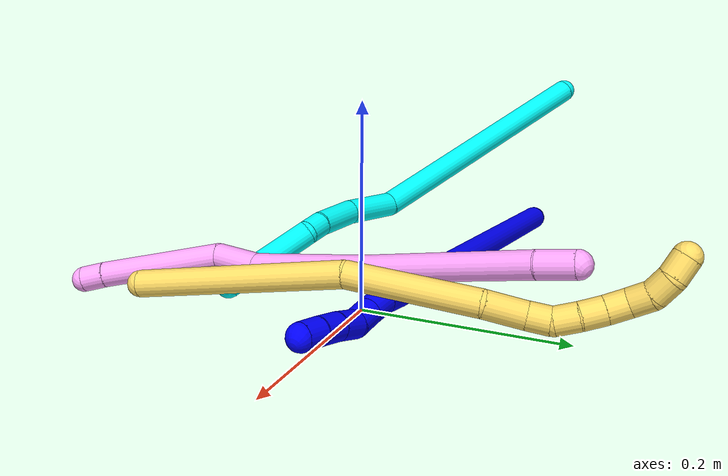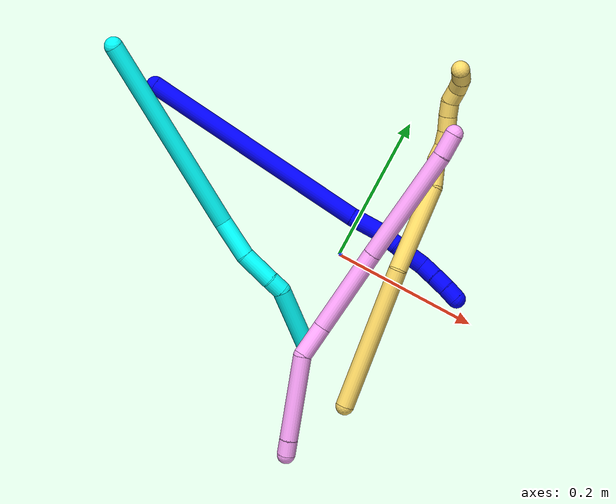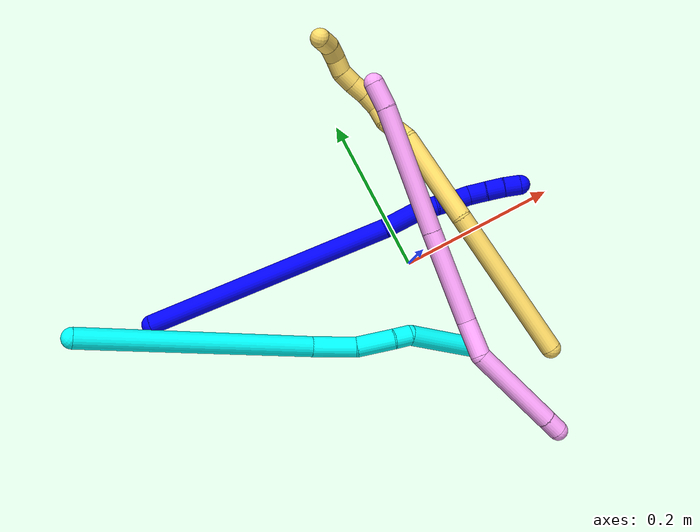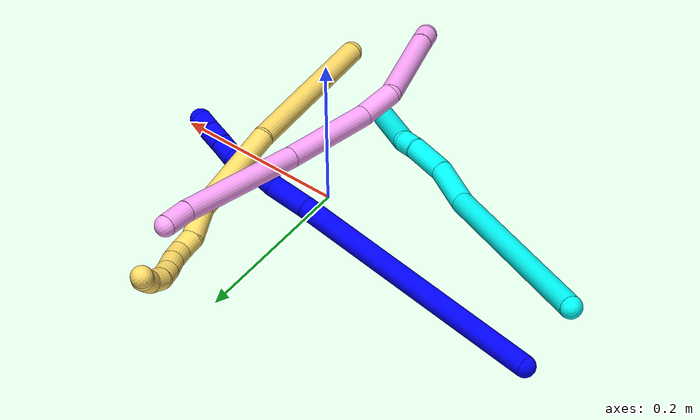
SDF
<sdf version="1.7">
 <world name="default">
  <model name="photoneo_s_sensor">
   <static>1</static>
   <pose>0 0 2 1.57079 1.57079 3.14159</pose>
   <link name="link">
    <inertial><mass>0.1</mass></inertial>
    <sensor name="sensor" type="depth">
     <update_rate>30</update_rate>
     <camera>
      <horizontal_fov>1.22</horizontal_fov>
      <image><width>1920</width><height>1200</height><format>B8G8R8</format></image>
      <clip><near>0.1</near><far>4</far></clip>
      <depth_camera><output>points</output></depth_camera>
     </camera>
     <plugin name="camera_plugin" filename="libgazebo_ros_depth_camera.so">
      <baseline>0.2</baseline>
      <alwaysOn>1</alwaysOn>
      <updateRate>0.0</updateRate>
      <cameraName>camera_ir</cameraName>
      <imageTopicName>/camera/color/image_raw</imageTopicName>
      <cameraInfoTopicName>/camera/color/camera_info</cameraInfoTopicName>
      <depthImageTopicName>/camera/depth/image_raw</depthImageTopicName>
      <depthImageCameraInfoTopicName>/camera/depth/camera_info</depthImageCameraInfoTopicName>
      <pointCloudTopicName>/camera/depth/points</pointCloudTopicName>
      <frameName>fr_optical</frameName>
      <pointCloudCutoff>0.1</pointCloudCutoff>
      <pointCloudCutoffMax>2.0</pointCloudCutoffMax>
      <distortionK1>0</distortionK1>
      <distortionK2>0</distortionK2>
      <distortionK3>0</distortionK3>
      <distortionT1>0</distortionT1>
      <distortionT2>0</distortionT2>
      <CxPrime>0</CxPrime>
      <Cx>0</Cx>
      <Cy>0</Cy>
      <focalLength>0</focalLength>
      <hackBaseline>0</hackBaseline>
     </plugin>
    </sensor>
   </link>
  </model>
  <model name="bin">
   <static>1</static>
   <link name="bottom">
    <collision name="collision-bottom">
     <pose>0 0 -0.01 0 -0 0</pose>
     <geometry><box><size>0.8 0.6 0.02</size></box></geometry>
     <surface>
      <friction><ode><mu>100</mu><mu2>100</mu2></ode></friction>
      <contact><collide_bitmask>65535</collide_bitmask></contact>
     </surface>
    </collision>
   </link>
   <link name="west_wall">
    <collision name="collision-west_wall">
     <pose>-0.41 0 0.1 0 -0 0</pose>
     <geometry><box><size>0.02 0.6 0.2</size></box></geometry>
     <surface>
      <friction><ode><mu>100</mu><mu2>100</mu2></ode></friction>
      <contact><collide_bitmask>65535</collide_bitmask></contact>
     </surface>
    </collision>
   </link>
   <link name="east_wall">
    <collision name="collision-east_wall">
     <pose>0.41 0 0.1 0 -0 0</pose>
     <geometry><box><size>0.02 0.6 0.2</size></box></geometry>
     <surface>
      <friction><ode><mu>100</mu><mu2>100</mu2></ode></friction>
      <contact><collide_bitmask>65535</collide_bitmask></contact>
     </surface>
    </collision>
   </link>
   <link name="south_wall">
    <collision name="collision-south_wall">
     <pose>0 -0.31 0.1 0 -0 0</pose>
     <geometry><box><size>0.8 0.02 0.2</size></box></geometry>
     <surface>
      <friction><ode><mu>100</mu><mu2>100</mu2></ode></friction>
      <contact><collide_bitmask>65535</collide_bitmask></contact>
     </surface>
    </collision>
   </link>
   <link name="north_wall">
    <collision name="collision-north_wall">
     <pose>0 0.31 0.1 0 -0 0</pose>
     <geometry><box><size>0.8 0.02 0.2</size></box></geometry>
     <surface>
      <friction><ode><mu>100</mu><mu2>100</mu2></ode></friction>
      <contact><collide_bitmask>65535</collide_bitmask></contact>
     </surface>
    </collision>
   </link>
  </model>
  <model name="1">
   <static>0</static>
   <link name="1">
    <collision name="collision-cylinder-e_1_1_4">
     <pose>0.062285 -0.010909 -0.146924 3.06748 0.399975 2.77979</pose>
     <geometry><cylinder><radius>0.0125</radius><length>0.319907</length></cylinder></geometry>
     <surface>
      <friction><ode><mu>1.16</mu><mu2>1.16</mu2><slip1>0</slip1><slip2>0</slip2></ode></friction>
      <contact><ode><kp>1e+06</kp><kd>1</kd><max_vel>0</max_vel><min_depth>0.001</min_depth></ode></contact>
     </surface>
    </collision>
    <visual name="visual-cylinder-e_1_1_4">
     <pose>0.062285 -0.010909 -0.146924 3.06748 0.399975 2.77979</pose>
     <geometry><cylinder><radius>0.0125</radius><length>0.319907</length></cylinder></geometry>
     <material><ambient>0 0 1 1</ambient></material>
    </visual>
    <collision name="collision-cylinder-e_2_4_5">
     <pose>0.134944 -0.021646 -0.313919 -3.13303 0.47704 -3.10639</pose>
     <geometry><cylinder><radius>0.0125</radius><length>0.045189</length></cylinder></geometry>
     <surface>
      <friction><ode><mu>1.16</mu><mu2>1.16</mu2><slip1>0</slip1><slip2>0</slip2></ode></friction>
      <contact><ode><kp>1e+06</kp><kd>1</kd><max_vel>0</max_vel><min_depth>0.001</min_depth></ode></contact>
     </surface>
    </collision>
    <visual name="visual-cylinder-e_2_4_5">
     <pose>0.134944 -0.021646 -0.313919 -3.13303 0.47704 -3.10639</pose>
     <geometry><cylinder><radius>0.0125</radius><length>0.045189</length></cylinder></geometry>
     <material><ambient>0 0 1 1</ambient></material>
    </visual>
    <collision name="collision-cylinder-e_3_5_6">
     <pose>0.149942 -0.023481 -0.345628 2.97086 0.373159 2.29038</pose>
     <geometry><cylinder><radius>0.0125</radius><length>0.025365</length></cylinder></geometry>
     <surface>
      <friction><ode><mu>1.16</mu><mu2>1.16</mu2><slip1>0</slip1><slip2>0</slip2></ode></friction>
      <contact><ode><kp>1e+06</kp><kd>1</kd><max_vel>0</max_vel><min_depth>0.001</min_depth></ode></contact>
     </surface>
    </collision>
    <visual name="visual-cylinder-e_3_5_6">
     <pose>0.149942 -0.023481 -0.345628 2.97086 0.373159 2.29038</pose>
     <geometry><cylinder><radius>0.0125</radius><length>0.025365</length></cylinder></geometry>
     <material><ambient>0 0 1 1</ambient></material>
    </visual>
    <collision name="collision-cylinder-e_4_6_7">
     <pose>0.15655 -0.02681 -0.36807 3.01975 0.180286 1.95431</pose>
     <geometry><cylinder><radius>0.0125</radius><length>0.022128</length></cylinder></geometry>
     <surface>
      <friction><ode><mu>1.16</mu><mu2>1.16</mu2><slip1>0</slip1><slip2>0</slip2></ode></friction>
      <contact><ode><kp>1e+06</kp><kd>1</kd><max_vel>0</max_vel><min_depth>0.001</min_depth></ode></contact>
     </surface>
    </collision>
    <visual name="visual-cylinder-e_4_6_7">
     <pose>0.15655 -0.02681 -0.36807 3.01975 0.180286 1.95431</pose>
     <geometry><cylinder><radius>0.0125</radius><length>0.022128</length></cylinder></geometry>
     <material><ambient>0 0 1 1</ambient></material>
    </visual>
    <collision name="collision-cylinder-e_5_7_8">
     <pose>0.160411 -0.02882 -0.389762 3.07857 0.170459 2.43473</pose>
     <geometry><cylinder><radius>0.0125</radius><length>0.02214</length></cylinder></geometry>
     <surface>
      <friction><ode><mu>1.16</mu><mu2>1.16</mu2><slip1>0</slip1><slip2>0</slip2></ode></friction>
      <contact><ode><kp>1e+06</kp><kd>1</kd><max_vel>0</max_vel><min_depth>0.001</min_depth></ode></contact>
     </surface>
    </collision>
    <visual name="visual-cylinder-e_5_7_8">
     <pose>0.160411 -0.02882 -0.389762 3.07857 0.170459 2.43473</pose>
     <geometry><cylinder><radius>0.0125</radius><length>0.02214</length></cylinder></geometry>
     <material><ambient>0 0 1 1</ambient></material>
    </visual>
    <collision name="collision-cylinder-e_6_8_9">
     <pose>0.168013 -0.032539 -0.410363 2.83908 0.512386 2.08763</pose>
     <geometry><cylinder><radius>0.0125</radius><length>0.02335</length></cylinder></geometry>
     <surface>
      <friction><ode><mu>1.16</mu><mu2>1.16</mu2><slip1>0</slip1><slip2>0</slip2></ode></friction>
      <contact><ode><kp>1e+06</kp><kd>1</kd><max_vel>0</max_vel><min_depth>0.001</min_depth></ode></contact>
     </surface>
    </collision>
    <visual name="visual-cylinder-e_6_8_9">
     <pose>0.168013 -0.032539 -0.410363 2.83908 0.512386 2.08763</pose>
     <geometry><cylinder><radius>0.0125</radius><length>0.02335</length></cylinder></geometry>
     <material><ambient>0 0 1 1</ambient></material>
    </visual>
    <collision name="collision-cylinder-e_7_9_10">
     <pose>0.178253 -0.038318 -0.42961 2.86102 0.427193 1.98739</pose>
     <geometry><cylinder><radius>0.0125</radius><length>0.021801</length></cylinder></geometry>
     <surface>
      <friction><ode><mu>1.16</mu><mu2>1.16</mu2><slip1>0</slip1><slip2>0</slip2></ode></friction>
      <contact><ode><kp>1e+06</kp><kd>1</kd><max_vel>0</max_vel><min_depth>0.001</min_depth></ode></contact>
     </surface>
    </collision>
    <visual name="visual-cylinder-e_7_9_10">
     <pose>0.178253 -0.038318 -0.42961 2.86102 0.427193 1.98739</pose>
     <geometry><cylinder><radius>0.0125</radius><length>0.021801</length></cylinder></geometry>
     <material><ambient>0 0 1 1</ambient></material>
    </visual>
    <collision name="collision-cylinder-e_8_10_2">
     <pose>0.186127 -0.04412 -0.448121 2.81354 0.3403 1.60815</pose>
     <geometry><cylinder><radius>0.0125</radius><length>0.020121</length></cylinder></geometry>
     <surface>
      <friction><ode><mu>1.16</mu><mu2>1.16</mu2><slip1>0</slip1><slip2>0</slip2></ode></friction>
      <contact><ode><kp>1e+06</kp><kd>1</kd><max_vel>0</max_vel><min_depth>0.001</min_depth></ode></contact>
     </surface>
    </collision>
    <visual name="visual-cylinder-e_8_10_2">
     <pose>0.186127 -0.04412 -0.448121 2.81354 0.3403 1.60815</pose>
     <geometry><cylinder><radius>0.0125</radius><length>0.020121</length></cylinder></geometry>
     <material><ambient>0 0 1 1</ambient></material>
    </visual>
    <collision name="collision-sphere-2">
     <pose>0.189485 -0.047176 -0.457098 0 -0 0</pose>
     <geometry><sphere><radius>0.0125</radius></sphere></geometry>
     <surface>
      <friction><ode><mu>1.16</mu><mu2>1.16</mu2><slip1>0</slip1><slip2>0</slip2></ode></friction>
      <contact><ode><kp>1e+06</kp><kd>1</kd><max_vel>0</max_vel><min_depth>0.001</min_depth></ode></contact>
     </surface>
    </collision>
    <visual name="visual-sphere-2">
     <pose>0.189485 -0.047176 -0.457098 0 -0 0</pose>
     <geometry><sphere><radius>0.0125</radius></sphere></geometry>
     <material><ambient>0 0 1 1</ambient></material>
    </visual>
    <collision name="collision-sphere-10">
     <pose>0.182769 -0.041065 -0.439143 0 -0 0</pose>
     <geometry><sphere><radius>0.0125</radius></sphere></geometry>
     <surface>
      <friction><ode><mu>1.16</mu><mu2>1.16</mu2><slip1>0</slip1><slip2>0</slip2></ode></friction>
      <contact><ode><kp>1e+06</kp><kd>1</kd><max_vel>0</max_vel><min_depth>0.001</min_depth></ode></contact>
     </surface>
    </collision>
    <visual name="visual-sphere-10">
     <pose>0.182769 -0.041065 -0.439143 0 -0 0</pose>
     <geometry><sphere><radius>0.0125</radius></sphere></geometry>
     <material><ambient>0 0 1 1</ambient></material>
    </visual>
    <collision name="collision-sphere-9">
     <pose>0.173737 -0.03557 -0.420077 0 -0 0</pose>
     <geometry><sphere><radius>0.0125</radius></sphere></geometry>
     <surface>
      <friction><ode><mu>1.16</mu><mu2>1.16</mu2><slip1>0</slip1><slip2>0</slip2></ode></friction>
      <contact><ode><kp>1e+06</kp><kd>1</kd><max_vel>0</max_vel><min_depth>0.001</min_depth></ode></contact>
     </surface>
    </collision>
    <visual name="visual-sphere-9">
     <pose>0.173737 -0.03557 -0.420077 0 -0 0</pose>
     <geometry><sphere><radius>0.0125</radius></sphere></geometry>
     <material><ambient>0 0 1 1</ambient></material>
    </visual>
    <collision name="collision-sphere-4">
     <pose>0.12457 -0.021818 -0.293848 0 -0 0</pose>
     <geometry><sphere><radius>0.0125</radius></sphere></geometry>
     <surface>
      <friction><ode><mu>1.16</mu><mu2>1.16</mu2><slip1>0</slip1><slip2>0</slip2></ode></friction>
      <contact><ode><kp>1e+06</kp><kd>1</kd><max_vel>0</max_vel><min_depth>0.001</min_depth></ode></contact>
     </surface>
    </collision>
    <visual name="visual-sphere-4">
     <pose>0.12457 -0.021818 -0.293848 0 -0 0</pose>
     <geometry><sphere><radius>0.0125</radius></sphere></geometry>
     <material><ambient>0 0 1 1</ambient></material>
    </visual>
    <collision name="collision-sphere-1">
     <geometry><sphere><radius>0.0125</radius></sphere></geometry>
     <surface>
      <friction><ode><mu>1.16</mu><mu2>1.16</mu2><slip1>0</slip1><slip2>0</slip2></ode></friction>
      <contact><ode><kp>1e+06</kp><kd>1</kd><max_vel>0</max_vel><min_depth>0.001</min_depth></ode></contact>
     </surface>
    </collision>
    <visual name="visual-sphere-1">
     <geometry><sphere><radius>0.0125</radius></sphere></geometry>
     <material><ambient>0 0 1 1</ambient></material>
    </visual>
    <collision name="collision-sphere-8">
     <pose>0.162289 -0.029507 -0.40065 0 -0 0</pose>
     <geometry><sphere><radius>0.0125</radius></sphere></geometry>
     <surface>
      <friction><ode><mu>1.16</mu><mu2>1.16</mu2><slip1>0</slip1><slip2>0</slip2></ode></friction>
      <contact><ode><kp>1e+06</kp><kd>1</kd><max_vel>0</max_vel><min_depth>0.001</min_depth></ode></contact>
     </surface>
    </collision>
    <visual name="visual-sphere-8">
     <pose>0.162289 -0.029507 -0.40065 0 -0 0</pose>
     <geometry><sphere><radius>0.0125</radius></sphere></geometry>
     <material><ambient>0 0 1 1</ambient></material>
    </visual>
    <collision name="collision-sphere-5">
     <pose>0.145319 -0.021474 -0.33399 0 -0 0</pose>
     <geometry><sphere><radius>0.0125</radius></sphere></geometry>
     <surface>
      <friction><ode><mu>1.16</mu><mu2>1.16</mu2><slip1>0</slip1><slip2>0</slip2></ode></friction>
      <contact><ode><kp>1e+06</kp><kd>1</kd><max_vel>0</max_vel><min_depth>0.001</min_depth></ode></contact>
     </surface>
    </collision>
    <visual name="visual-sphere-5">
     <pose>0.145319 -0.021474 -0.33399 0 -0 0</pose>
     <geometry><sphere><radius>0.0125</radius></sphere></geometry>
     <material><ambient>0 0 1 1</ambient></material>
    </visual>
    <collision name="collision-sphere-6">
     <pose>0.154566 -0.025487 -0.357266 0 -0 0</pose>
     <geometry><sphere><radius>0.0125</radius></sphere></geometry>
     <surface>
      <friction><ode><mu>1.16</mu><mu2>1.16</mu2><slip1>0</slip1><slip2>0</slip2></ode></friction>
      <contact><ode><kp>1e+06</kp><kd>1</kd><max_vel>0</max_vel><min_depth>0.001</min_depth></ode></contact>
     </surface>
    </collision>
    <visual name="visual-sphere-6">
     <pose>0.154566 -0.025487 -0.357266 0 -0 0</pose>
     <geometry><sphere><radius>0.0125</radius></sphere></geometry>
     <material><ambient>0 0 1 1</ambient></material>
    </visual>
    <collision name="collision-sphere-7">
     <pose>0.158533 -0.028133 -0.378874 0 -0 0</pose>
     <geometry><sphere><radius>0.0125</radius></sphere></geometry>
     <surface>
      <friction><ode><mu>1.16</mu><mu2>1.16</mu2><slip1>0</slip1><slip2>0</slip2></ode></friction>
      <contact><ode><kp>1e+06</kp><kd>1</kd><max_vel>0</max_vel><min_depth>0.001</min_depth></ode></contact>
     </surface>
    </collision>
    <visual name="visual-sphere-7">
     <pose>0.158533 -0.028133 -0.378874 0 -0 0</pose>
     <geometry><sphere><radius>0.0125</radius></sphere></geometry>
     <material><ambient>0 0 1 1</ambient></material>
    </visual>
    <inertial>
     <pose>0.096793 -0.017556 -0.229386 0 -0 0</pose>
     <mass>0.5</mass>
     <inertia>
      <ixx>-0.001458</ixx>
      <ixy>0</ixy>
      <ixz>0</ixz>
      <iyy>0.003498</iyy>
      <iyz>0</iyz>
      <izz>-0.000922</izz>
     </inertia>
    </inertial>
   </link>
   <pose>-0.327049 0.082118 0.012476 -0.499765 -1.17607 0.42895</pose>
  </model>
  <model name="3">
   <static>0</static>
   <link name="3">
    <collision name="collision-cylinder-e_1_1_4">
     <pose>0.065262 -0.022928 -0.123762 2.95841 0.478338 2.4211</pose>
     <geometry><cylinder><radius>0.0125</radius><length>0.283562</length></cylinder></geometry>
     <surface>
      <friction><ode><mu>1.16</mu><mu2>1.16</mu2><slip1>0</slip1><slip2>0</slip2></ode></friction>
      <contact><ode><kp>1e+06</kp><kd>1</kd><max_vel>0</max_vel><min_depth>0.001</min_depth></ode></contact>
     </surface>
    </collision>
    <visual name="visual-cylinder-e_1_1_4">
     <pose>0.065262 -0.022928 -0.123762 2.95841 0.478338 2.4211</pose>
     <geometry><cylinder><radius>0.0125</radius><length>0.283562</length></cylinder></geometry>
     <material><ambient>0.003922 1 0.996078 1</ambient></material>
    </visual>
    <collision name="collision-cylinder-e_2_4_5">
     <pose>0.145873 -0.058226 -0.265996 2.55156 0.604235 1.59606</pose>
     <geometry><cylinder><radius>0.0125</radius><length>0.05403</length></cylinder></geometry>
     <surface>
      <friction><ode><mu>1.16</mu><mu2>1.16</mu2><slip1>0</slip1><slip2>0</slip2></ode></friction>
      <contact><ode><kp>1e+06</kp><kd>1</kd><max_vel>0</max_vel><min_depth>0.001</min_depth></ode></contact>
     </surface>
    </collision>
    <visual name="visual-cylinder-e_2_4_5">
     <pose>0.145873 -0.058226 -0.265996 2.55156 0.604235 1.59606</pose>
     <geometry><cylinder><radius>0.0125</radius><length>0.05403</length></cylinder></geometry>
     <material><ambient>0.003922 1 0.996078 1</ambient></material>
    </visual>
    <collision name="collision-cylinder-e_3_5_6">
     <pose>0.17809 -0.07761 -0.298871 2.68834 0.811223 2.15602</pose>
     <geometry><cylinder><radius>0.0125</radius><length>0.046528</length></cylinder></geometry>
     <surface>
      <friction><ode><mu>1.16</mu><mu2>1.16</mu2><slip1>0</slip1><slip2>0</slip2></ode></friction>
      <contact><ode><kp>1e+06</kp><kd>1</kd><max_vel>0</max_vel><min_depth>0.001</min_depth></ode></contact>
     </surface>
    </collision>
    <visual name="visual-cylinder-e_3_5_6">
     <pose>0.17809 -0.07761 -0.298871 2.68834 0.811223 2.15602</pose>
     <geometry><cylinder><radius>0.0125</radius><length>0.046528</length></cylinder></geometry>
     <material><ambient>0.003922 1 0.996078 1</ambient></material>
    </visual>
    <collision name="collision-cylinder-e_4_6_7">
     <pose>0.202299 -0.086346 -0.320569 2.91001 0.774849 2.58623</pose>
     <geometry><cylinder><radius>0.0125</radius><length>0.020982</length></cylinder></geometry>
     <surface>
      <friction><ode><mu>1.16</mu><mu2>1.16</mu2><slip1>0</slip1><slip2>0</slip2></ode></friction>
      <contact><ode><kp>1e+06</kp><kd>1</kd><max_vel>0</max_vel><min_depth>0.001</min_depth></ode></contact>
     </surface>
    </collision>
    <visual name="visual-cylinder-e_4_6_7">
     <pose>0.202299 -0.086346 -0.320569 2.91001 0.774849 2.58623</pose>
     <geometry><cylinder><radius>0.0125</radius><length>0.020982</length></cylinder></geometry>
     <material><ambient>0.003922 1 0.996078 1</ambient></material>
    </visual>
    <collision name="collision-cylinder-e_5_7_2">
     <pose>0.224766 -0.093867 -0.372463 3.01224 0.324474 2.38801</pose>
     <geometry><cylinder><radius>0.0125</radius><length>0.094899</length></cylinder></geometry>
     <surface>
      <friction><ode><mu>1.16</mu><mu2>1.16</mu2><slip1>0</slip1><slip2>0</slip2></ode></friction>
      <contact><ode><kp>1e+06</kp><kd>1</kd><max_vel>0</max_vel><min_depth>0.001</min_depth></ode></contact>
     </surface>
    </collision>
    <visual name="visual-cylinder-e_5_7_2">
     <pose>0.224766 -0.093867 -0.372463 3.01224 0.324474 2.38801</pose>
     <geometry><cylinder><radius>0.0125</radius><length>0.094899</length></cylinder></geometry>
     <material><ambient>0.003922 1 0.996078 1</ambient></material>
    </visual>
    <collision name="collision-sphere-2">
     <pose>0.239893 -0.099669 -0.41706 0 -0 0</pose>
     <geometry><sphere><radius>0.0125</radius></sphere></geometry>
     <surface>
      <friction><ode><mu>1.16</mu><mu2>1.16</mu2><slip1>0</slip1><slip2>0</slip2></ode></friction>
      <contact><ode><kp>1e+06</kp><kd>1</kd><max_vel>0</max_vel><min_depth>0.001</min_depth></ode></contact>
     </surface>
    </collision>
    <visual name="visual-sphere-2">
     <pose>0.239893 -0.099669 -0.41706 0 -0 0</pose>
     <geometry><sphere><radius>0.0125</radius></sphere></geometry>
     <material><ambient>0.003922 1 0.996078 1</ambient></material>
    </visual>
    <collision name="collision-sphere-7">
     <pose>0.209639 -0.088066 -0.327865 0 -0 0</pose>
     <geometry><sphere><radius>0.0125</radius></sphere></geometry>
     <surface>
      <friction><ode><mu>1.16</mu><mu2>1.16</mu2><slip1>0</slip1><slip2>0</slip2></ode></friction>
      <contact><ode><kp>1e+06</kp><kd>1</kd><max_vel>0</max_vel><min_depth>0.001</min_depth></ode></contact>
     </surface>
    </collision>
    <visual name="visual-sphere-7">
     <pose>0.209639 -0.088066 -0.327865 0 -0 0</pose>
     <geometry><sphere><radius>0.0125</radius></sphere></geometry>
     <material><ambient>0.003922 1 0.996078 1</ambient></material>
    </visual>
    <collision name="collision-sphere-6">
     <pose>0.194959 -0.084625 -0.313273 0 -0 0</pose>
     <geometry><sphere><radius>0.0125</radius></sphere></geometry>
     <surface>
      <friction><ode><mu>1.16</mu><mu2>1.16</mu2><slip1>0</slip1><slip2>0</slip2></ode></friction>
      <contact><ode><kp>1e+06</kp><kd>1</kd><max_vel>0</max_vel><min_depth>0.001</min_depth></ode></contact>
     </surface>
    </collision>
    <visual name="visual-sphere-6">
     <pose>0.194959 -0.084625 -0.313273 0 -0 0</pose>
     <geometry><sphere><radius>0.0125</radius></sphere></geometry>
     <material><ambient>0.003922 1 0.996078 1</ambient></material>
    </visual>
    <collision name="collision-sphere-5">
     <pose>0.161221 -0.070595 -0.284468 0 -0 0</pose>
     <geometry><sphere><radius>0.0125</radius></sphere></geometry>
     <surface>
      <friction><ode><mu>1.16</mu><mu2>1.16</mu2><slip1>0</slip1><slip2>0</slip2></ode></friction>
      <contact><ode><kp>1e+06</kp><kd>1</kd><max_vel>0</max_vel><min_depth>0.001</min_depth></ode></contact>
     </surface>
    </collision>
    <visual name="visual-sphere-5">
     <pose>0.161221 -0.070595 -0.284468 0 -0 0</pose>
     <geometry><sphere><radius>0.0125</radius></sphere></geometry>
     <material><ambient>0.003922 1 0.996078 1</ambient></material>
    </visual>
    <collision name="collision-sphere-1">
     <geometry><sphere><radius>0.0125</radius></sphere></geometry>
     <surface>
      <friction><ode><mu>1.16</mu><mu2>1.16</mu2><slip1>0</slip1><slip2>0</slip2></ode></friction>
      <contact><ode><kp>1e+06</kp><kd>1</kd><max_vel>0</max_vel><min_depth>0.001</min_depth></ode></contact>
     </surface>
    </collision>
    <visual name="visual-sphere-1">
     <geometry><sphere><radius>0.0125</radius></sphere></geometry>
     <material><ambient>0.003922 1 0.996078 1</ambient></material>
    </visual>
    <collision name="collision-sphere-4">
     <pose>0.130525 -0.045857 -0.247523 0 -0 0</pose>
     <geometry><sphere><radius>0.0125</radius></sphere></geometry>
     <surface>
      <friction><ode><mu>1.16</mu><mu2>1.16</mu2><slip1>0</slip1><slip2>0</slip2></ode></friction>
      <contact><ode><kp>1e+06</kp><kd>1</kd><max_vel>0</max_vel><min_depth>0.001</min_depth></ode></contact>
     </surface>
    </collision>
    <visual name="visual-sphere-4">
     <pose>0.130525 -0.045857 -0.247523 0 -0 0</pose>
     <geometry><sphere><radius>0.0125</radius></sphere></geometry>
     <material><ambient>0.003922 1 0.996078 1</ambient></material>
    </visual>
    <inertial>
     <pose>0.120496 -0.047956 -0.210888 0 -0 0</pose>
     <mass>0.5</mass>
     <inertia>
      <ixx>-0.000126</ixx>
      <ixy>0</ixy>
      <ixz>0</ixz>
      <iyy>0.002768</iyy>
      <iyz>0</iyz>
      <izz>-0.000625</izz>
     </inertia>
    </inertial>
   </link>
   <pose>-0.388502 0.095954 0.157842 -0.900102 -0.138251 0.468211</pose>
  </model>
  <model name="4">
   <static>0</static>
   <link name="4">
    <collision name="collision-cylinder-e_1_1_4">
     <pose>-0.002465 -0.010578 0.012646 0.696621 -0.148427 -0.053982</pose>
     <geometry><cylinder><radius>0.0125</radius><length>0.03334</length></cylinder></geometry>
     <surface>
      <friction><ode><mu>1.16</mu><mu2>1.16</mu2><slip1>0</slip1><slip2>0</slip2></ode></friction>
      <contact><ode><kp>1e+06</kp><kd>1</kd><max_vel>0</max_vel><min_depth>0.001</min_depth></ode></contact>
     </surface>
    </collision>
    <visual name="visual-cylinder-e_1_1_4">
     <pose>-0.002465 -0.010578 0.012646 0.696621 -0.148427 -0.053982</pose>
     <geometry><cylinder><radius>0.0125</radius><length>0.03334</length></cylinder></geometry>
     <material><ambient>1 0.65098 0.996078 1</ambient></material>
    </visual>
    <collision name="collision-cylinder-e_2_4_5">
     <pose>-0.025425 -0.068291 0.087695 0.646895 -0.256299 -0.086336</pose>
     <geometry><cylinder><radius>0.0125</radius><length>0.161689</length></cylinder></geometry>
     <surface>
      <friction><ode><mu>1.16</mu><mu2>1.16</mu2><slip1>0</slip1><slip2>0</slip2></ode></friction>
      <contact><ode><kp>1e+06</kp><kd>1</kd><max_vel>0</max_vel><min_depth>0.001</min_depth></ode></contact>
     </surface>
    </collision>
    <visual name="visual-cylinder-e_2_4_5">
     <pose>-0.025425 -0.068291 0.087695 0.646895 -0.256299 -0.086336</pose>
     <geometry><cylinder><radius>0.0125</radius><length>0.161689</length></cylinder></geometry>
     <material><ambient>1 0.65098 0.996078 1</ambient></material>
    </visual>
    <collision name="collision-cylinder-e_3_5_6">
     <pose>-0.05855 -0.149653 0.197438 0.626004 -0.212941 -0.069151</pose>
     <geometry><cylinder><radius>0.0125</radius><length>0.119535</length></cylinder></geometry>
     <surface>
      <friction><ode><mu>1.16</mu><mu2>1.16</mu2><slip1>0</slip1><slip2>0</slip2></ode></friction>
      <contact><ode><kp>1e+06</kp><kd>1</kd><max_vel>0</max_vel><min_depth>0.001</min_depth></ode></contact>
     </surface>
    </collision>
    <visual name="visual-cylinder-e_3_5_6">
     <pose>-0.05855 -0.149653 0.197438 0.626004 -0.212941 -0.069151</pose>
     <geometry><cylinder><radius>0.0125</radius><length>0.119535</length></cylinder></geometry>
     <material><ambient>1 0.65098 0.996078 1</ambient></material>
    </visual>
    <collision name="collision-cylinder-e_4_6_7">
     <pose>-0.072377 -0.194679 0.264979 0.490899 -0.05215 -0.013066</pose>
     <geometry><cylinder><radius>0.0125</radius><length>0.045874</length></cylinder></geometry>
     <surface>
      <friction><ode><mu>1.16</mu><mu2>1.16</mu2><slip1>0</slip1><slip2>0</slip2></ode></friction>
      <contact><ode><kp>1e+06</kp><kd>1</kd><max_vel>0</max_vel><min_depth>0.001</min_depth></ode></contact>
     </surface>
    </collision>
    <visual name="visual-cylinder-e_4_6_7">
     <pose>-0.072377 -0.194679 0.264979 0.490899 -0.05215 -0.013066</pose>
     <geometry><cylinder><radius>0.0125</radius><length>0.045874</length></cylinder></geometry>
     <material><ambient>1 0.65098 0.996078 1</ambient></material>
    </visual>
    <collision name="collision-cylinder-e_5_7_8">
     <pose>-0.072443 -0.254835 0.31724 0.994742 0.01918 0.010413</pose>
     <geometry><cylinder><radius>0.0125</radius><length>0.117735</length></cylinder></geometry>
     <surface>
      <friction><ode><mu>1.16</mu><mu2>1.16</mu2><slip1>0</slip1><slip2>0</slip2></ode></friction>
      <contact><ode><kp>1e+06</kp><kd>1</kd><max_vel>0</max_vel><min_depth>0.001</min_depth></ode></contact>
     </surface>
    </collision>
    <visual name="visual-cylinder-e_5_7_8">
     <pose>-0.072443 -0.254835 0.31724 0.994742 0.01918 0.010413</pose>
     <geometry><cylinder><radius>0.0125</radius><length>0.117735</length></cylinder></geometry>
     <material><ambient>1 0.65098 0.996078 1</ambient></material>
    </visual>
    <collision name="collision-cylinder-e_6_8_2">
     <pose>-0.071589 -0.313539 0.35493 1.02868 -0.025227 -0.014255</pose>
     <geometry><cylinder><radius>0.0125</radius><length>0.021827</length></cylinder></geometry>
     <surface>
      <friction><ode><mu>1.16</mu><mu2>1.16</mu2><slip1>0</slip1><slip2>0</slip2></ode></friction>
      <contact><ode><kp>1e+06</kp><kd>1</kd><max_vel>0</max_vel><min_depth>0.001</min_depth></ode></contact>
     </surface>
    </collision>
    <visual name="visual-cylinder-e_6_8_2">
     <pose>-0.071589 -0.313539 0.35493 1.02868 -0.025227 -0.014255</pose>
     <geometry><cylinder><radius>0.0125</radius><length>0.021827</length></cylinder></geometry>
     <material><ambient>1 0.65098 0.996078 1</ambient></material>
    </visual>
    <collision name="collision-sphere-2">
     <pose>-0.071865 -0.322885 0.360559 0 -0 0</pose>
     <geometry><sphere><radius>0.0125</radius></sphere></geometry>
     <surface>
      <friction><ode><mu>1.16</mu><mu2>1.16</mu2><slip1>0</slip1><slip2>0</slip2></ode></friction>
      <contact><ode><kp>1e+06</kp><kd>1</kd><max_vel>0</max_vel><min_depth>0.001</min_depth></ode></contact>
     </surface>
    </collision>
    <visual name="visual-sphere-2">
     <pose>-0.071865 -0.322885 0.360559 0 -0 0</pose>
     <geometry><sphere><radius>0.0125</radius></sphere></geometry>
     <material><ambient>1 0.65098 0.996078 1</ambient></material>
    </visual>
    <collision name="collision-sphere-4">
     <pose>-0.00493 -0.021157 0.025291 0 -0 0</pose>
     <geometry><sphere><radius>0.0125</radius></sphere></geometry>
     <surface>
      <friction><ode><mu>1.16</mu><mu2>1.16</mu2><slip1>0</slip1><slip2>0</slip2></ode></friction>
      <contact><ode><kp>1e+06</kp><kd>1</kd><max_vel>0</max_vel><min_depth>0.001</min_depth></ode></contact>
     </surface>
    </collision>
    <visual name="visual-sphere-4">
     <pose>-0.00493 -0.021157 0.025291 0 -0 0</pose>
     <geometry><sphere><radius>0.0125</radius></sphere></geometry>
     <material><ambient>1 0.65098 0.996078 1</ambient></material>
    </visual>
    <collision name="collision-sphere-1">
     <geometry><sphere><radius>0.0125</radius></sphere></geometry>
     <surface>
      <friction><ode><mu>1.16</mu><mu2>1.16</mu2><slip1>0</slip1><slip2>0</slip2></ode></friction>
      <contact><ode><kp>1e+06</kp><kd>1</kd><max_vel>0</max_vel><min_depth>0.001</min_depth></ode></contact>
     </surface>
    </collision>
    <visual name="visual-sphere-1">
     <geometry><sphere><radius>0.0125</radius></sphere></geometry>
     <material><ambient>1 0.65098 0.996078 1</ambient></material>
    </visual>
    <collision name="collision-sphere-8">
     <pose>-0.071314 -0.304194 0.349301 0 -0 0</pose>
     <geometry><sphere><radius>0.0125</radius></sphere></geometry>
     <surface>
      <friction><ode><mu>1.16</mu><mu2>1.16</mu2><slip1>0</slip1><slip2>0</slip2></ode></friction>
      <contact><ode><kp>1e+06</kp><kd>1</kd><max_vel>0</max_vel><min_depth>0.001</min_depth></ode></contact>
     </surface>
    </collision>
    <visual name="visual-sphere-8">
     <pose>-0.071314 -0.304194 0.349301 0 -0 0</pose>
     <geometry><sphere><radius>0.0125</radius></sphere></geometry>
     <material><ambient>1 0.65098 0.996078 1</ambient></material>
    </visual>
    <collision name="collision-sphere-5">
     <pose>-0.045919 -0.115426 0.150098 0 -0 0</pose>
     <geometry><sphere><radius>0.0125</radius></sphere></geometry>
     <surface>
      <friction><ode><mu>1.16</mu><mu2>1.16</mu2><slip1>0</slip1><slip2>0</slip2></ode></friction>
      <contact><ode><kp>1e+06</kp><kd>1</kd><max_vel>0</max_vel><min_depth>0.001</min_depth></ode></contact>
     </surface>
    </collision>
    <visual name="visual-sphere-5">
     <pose>-0.045919 -0.115426 0.150098 0 -0 0</pose>
     <geometry><sphere><radius>0.0125</radius></sphere></geometry>
     <material><ambient>1 0.65098 0.996078 1</ambient></material>
    </visual>
    <collision name="collision-sphere-6">
     <pose>-0.071181 -0.183881 0.244778 0 -0 0</pose>
     <geometry><sphere><radius>0.0125</radius></sphere></geometry>
     <surface>
      <friction><ode><mu>1.16</mu><mu2>1.16</mu2><slip1>0</slip1><slip2>0</slip2></ode></friction>
      <contact><ode><kp>1e+06</kp><kd>1</kd><max_vel>0</max_vel><min_depth>0.001</min_depth></ode></contact>
     </surface>
    </collision>
    <visual name="visual-sphere-6">
     <pose>-0.071181 -0.183881 0.244778 0 -0 0</pose>
     <geometry><sphere><radius>0.0125</radius></sphere></geometry>
     <material><ambient>1 0.65098 0.996078 1</ambient></material>
    </visual>
    <collision name="collision-sphere-7">
     <pose>-0.073572 -0.205477 0.28518 0 -0 0</pose>
     <geometry><sphere><radius>0.0125</radius></sphere></geometry>
     <surface>
      <friction><ode><mu>1.16</mu><mu2>1.16</mu2><slip1>0</slip1><slip2>0</slip2></ode></friction>
      <contact><ode><kp>1e+06</kp><kd>1</kd><max_vel>0</max_vel><min_depth>0.001</min_depth></ode></contact>
     </surface>
    </collision>
    <visual name="visual-sphere-7">
     <pose>-0.073572 -0.205477 0.28518 0 -0 0</pose>
     <geometry><sphere><radius>0.0125</radius></sphere></geometry>
     <material><ambient>1 0.65098 0.996078 1</ambient></material>
    </visual>
    <inertial>
     <pose>-0.049207 -0.150121 0.190909 0 -0 0</pose>
     <mass>0.5</mass>
     <inertia>
      <ixx>0.000601</ixx>
      <ixy>0</ixy>
      <ixz>0</ixz>
      <iyy>0.000435</iyy>
      <iyz>0</iyz>
      <izz>0.000569</izz>
     </inertia>
    </inertial>
   </link>
   <pose>0.055751 0.20995 0.093913 0.926916 -0.907815 0.042506</pose>
  </model>
  <model name="5">
   <static>0</static>
   <link name="5">
    <collision name="collision-cylinder-e_1_1_4">
     <pose>-0.065914 0.048398 0.055504 -0.717112 -0.730077 0.284503</pose>
     <geometry><cylinder><radius>0.0125</radius><length>0.197664</length></cylinder></geometry>
     <surface>
      <friction><ode><mu>1.16</mu><mu2>1.16</mu2><slip1>0</slip1><slip2>0</slip2></ode></friction>
      <contact><ode><kp>1e+06</kp><kd>1</kd><max_vel>0</max_vel><min_depth>0.001</min_depth></ode></contact>
     </surface>
    </collision>
    <visual name="visual-cylinder-e_1_1_4">
     <pose>-0.065914 0.048398 0.055504 -0.717112 -0.730077 0.284503</pose>
     <geometry><cylinder><radius>0.0125</radius><length>0.197664</length></cylinder></geometry>
     <material><ambient>1 0.858824 0.4 1</ambient></material>
    </visual>
    <collision name="collision-cylinder-e_2_4_5">
     <pose>-0.168321 0.137454 0.135844 -1.02245 -0.653651 0.375831</pose>
     <geometry><cylinder><radius>0.0125</radius><length>0.120027</length></cylinder></geometry>
     <surface>
      <friction><ode><mu>1.16</mu><mu2>1.16</mu2><slip1>0</slip1><slip2>0</slip2></ode></friction>
      <contact><ode><kp>1e+06</kp><kd>1</kd><max_vel>0</max_vel><min_depth>0.001</min_depth></ode></contact>
     </surface>
    </collision>
    <visual name="visual-cylinder-e_2_4_5">
     <pose>-0.168321 0.137454 0.135844 -1.02245 -0.653651 0.375831</pose>
     <geometry><cylinder><radius>0.0125</radius><length>0.120027</length></cylinder></geometry>
     <material><ambient>1 0.858824 0.4 1</ambient></material>
    </visual>
    <collision name="collision-cylinder-e_3_5_6">
     <pose>-0.219019 0.19015 0.163112 -1.37132 -0.857906 0.716043</pose>
     <geometry><cylinder><radius>0.0125</radius><length>0.037555</length></cylinder></geometry>
     <surface>
      <friction><ode><mu>1.16</mu><mu2>1.16</mu2><slip1>0</slip1><slip2>0</slip2></ode></friction>
      <contact><ode><kp>1e+06</kp><kd>1</kd><max_vel>0</max_vel><min_depth>0.001</min_depth></ode></contact>
     </surface>
    </collision>
    <visual name="visual-cylinder-e_3_5_6">
     <pose>-0.219019 0.19015 0.163112 -1.37132 -0.857906 0.716043</pose>
     <geometry><cylinder><radius>0.0125</radius><length>0.037555</length></cylinder></geometry>
     <material><ambient>1 0.858824 0.4 1</ambient></material>
    </visual>
    <collision name="collision-cylinder-e_4_6_7">
     <pose>-0.239356 0.209674 0.170389 -0.996613 -0.602485 0.334938</pose>
     <geometry><cylinder><radius>0.0125</radius><length>0.021644</length></cylinder></geometry>
     <surface>
      <friction><ode><mu>1.16</mu><mu2>1.16</mu2><slip1>0</slip1><slip2>0</slip2></ode></friction>
      <contact><ode><kp>1e+06</kp><kd>1</kd><max_vel>0</max_vel><min_depth>0.001</min_depth></ode></contact>
     </surface>
    </collision>
    <visual name="visual-cylinder-e_4_6_7">
     <pose>-0.239356 0.209674 0.170389 -0.996613 -0.602485 0.334938</pose>
     <geometry><cylinder><radius>0.0125</radius><length>0.021644</length></cylinder></geometry>
     <material><ambient>1 0.858824 0.4 1</ambient></material>
    </visual>
    <collision name="collision-cylinder-e_5_7_8">
     <pose>-0.253833 0.220754 0.181034 -0.55449 -0.885177 0.268128</pose>
     <geometry><cylinder><radius>0.0125</radius><length>0.02156</length></cylinder></geometry>
     <surface>
      <friction><ode><mu>1.16</mu><mu2>1.16</mu2><slip1>0</slip1><slip2>0</slip2></ode></friction>
      <contact><ode><kp>1e+06</kp><kd>1</kd><max_vel>0</max_vel><min_depth>0.001</min_depth></ode></contact>
     </surface>
    </collision>
    <visual name="visual-cylinder-e_5_7_8">
     <pose>-0.253833 0.220754 0.181034 -0.55449 -0.885177 0.268128</pose>
     <geometry><cylinder><radius>0.0125</radius><length>0.02156</length></cylinder></geometry>
     <material><ambient>1 0.858824 0.4 1</ambient></material>
    </visual>
    <collision name="collision-cylinder-e_6_8_9">
     <pose>-0.271144 0.22707 0.191662 -0.513706 -1.01733 0.290847</pose>
     <geometry><cylinder><radius>0.0125</radius><length>0.021082</length></cylinder></geometry>
     <surface>
      <friction><ode><mu>1.16</mu><mu2>1.16</mu2><slip1>0</slip1><slip2>0</slip2></ode></friction>
      <contact><ode><kp>1e+06</kp><kd>1</kd><max_vel>0</max_vel><min_depth>0.001</min_depth></ode></contact>
     </surface>
    </collision>
    <visual name="visual-cylinder-e_6_8_9">
     <pose>-0.271144 0.22707 0.191662 -0.513706 -1.01733 0.290847</pose>
     <geometry><cylinder><radius>0.0125</radius><length>0.021082</length></cylinder></geometry>
     <material><ambient>1 0.858824 0.4 1</ambient></material>
    </visual>
    <collision name="collision-cylinder-e_7_9_10">
     <pose>-0.288144 0.232014 0.202093 -0.377368 -0.927008 0.190311</pose>
     <geometry><cylinder><radius>0.0125</radius><length>0.020088</length></cylinder></geometry>
     <surface>
      <friction><ode><mu>1.16</mu><mu2>1.16</mu2><slip1>0</slip1><slip2>0</slip2></ode></friction>
      <contact><ode><kp>1e+06</kp><kd>1</kd><max_vel>0</max_vel><min_depth>0.001</min_depth></ode></contact>
     </surface>
    </collision>
    <visual name="visual-cylinder-e_7_9_10">
     <pose>-0.288144 0.232014 0.202093 -0.377368 -0.927008 0.190311</pose>
     <geometry><cylinder><radius>0.0125</radius><length>0.020088</length></cylinder></geometry>
     <material><ambient>1 0.858824 0.4 1</ambient></material>
    </visual>
    <collision name="collision-cylinder-e_8_10_11">
     <pose>-0.301521 0.236766 0.215836 -0.301351 -0.559971 0.087256</pose>
     <geometry><cylinder><radius>0.0125</radius><length>0.02012</length></cylinder></geometry>
     <surface>
      <friction><ode><mu>1.16</mu><mu2>1.16</mu2><slip1>0</slip1><slip2>0</slip2></ode></friction>
      <contact><ode><kp>1e+06</kp><kd>1</kd><max_vel>0</max_vel><min_depth>0.001</min_depth></ode></contact>
     </surface>
    </collision>
    <visual name="visual-cylinder-e_8_10_11">
     <pose>-0.301521 0.236766 0.215836 -0.301351 -0.559971 0.087256</pose>
     <geometry><cylinder><radius>0.0125</radius><length>0.02012</length></cylinder></geometry>
     <material><ambient>1 0.858824 0.4 1</ambient></material>
    </visual>
    <collision name="collision-cylinder-e_9_11_12">
     <pose>-0.311984 0.237765 0.232515 0.177343 -0.533064 -0.048537</pose>
     <geometry><cylinder><radius>0.0125</radius><length>0.020146</length></cylinder></geometry>
     <surface>
      <friction><ode><mu>1.16</mu><mu2>1.16</mu2><slip1>0</slip1><slip2>0</slip2></ode></friction>
      <contact><ode><kp>1e+06</kp><kd>1</kd><max_vel>0</max_vel><min_depth>0.001</min_depth></ode></contact>
     </surface>
    </collision>
    <visual name="visual-cylinder-e_9_11_12">
     <pose>-0.311984 0.237765 0.232515 0.177343 -0.533064 -0.048537</pose>
     <geometry><cylinder><radius>0.0125</radius><length>0.020146</length></cylinder></geometry>
     <material><ambient>1 0.858824 0.4 1</ambient></material>
    </visual>
    <collision name="collision-cylinder-e_10_12_2">
     <pose>-0.323601 0.232231 0.247604 0.548707 -0.702558 -0.205565</pose>
     <geometry><cylinder><radius>0.0125</radius><length>0.020116</length></cylinder></geometry>
     <surface>
      <friction><ode><mu>1.16</mu><mu2>1.16</mu2><slip1>0</slip1><slip2>0</slip2></ode></friction>
      <contact><ode><kp>1e+06</kp><kd>1</kd><max_vel>0</max_vel><min_depth>0.001</min_depth></ode></contact>
     </surface>
    </collision>
    <visual name="visual-cylinder-e_10_12_2">
     <pose>-0.323601 0.232231 0.247604 0.548707 -0.702558 -0.205565</pose>
     <geometry><cylinder><radius>0.0125</radius><length>0.020116</length></cylinder></geometry>
     <material><ambient>1 0.858824 0.4 1</ambient></material>
    </visual>
    <collision name="collision-sphere-2">
     <pose>-0.330101 0.228227 0.254153 0 -0 0</pose>
     <geometry><sphere><radius>0.0125</radius></sphere></geometry>
     <surface>
      <friction><ode><mu>1.16</mu><mu2>1.16</mu2><slip1>0</slip1><slip2>0</slip2></ode></friction>
      <contact><ode><kp>1e+06</kp><kd>1</kd><max_vel>0</max_vel><min_depth>0.001</min_depth></ode></contact>
     </surface>
    </collision>
    <visual name="visual-sphere-2">
     <pose>-0.330101 0.228227 0.254153 0 -0 0</pose>
     <geometry><sphere><radius>0.0125</radius></sphere></geometry>
     <material><ambient>1 0.858824 0.4 1</ambient></material>
    </visual>
    <collision name="collision-sphere-12">
     <pose>-0.317102 0.236235 0.241054 0 -0 0</pose>
     <geometry><sphere><radius>0.0125</radius></sphere></geometry>
     <surface>
      <friction><ode><mu>1.16</mu><mu2>1.16</mu2><slip1>0</slip1><slip2>0</slip2></ode></friction>
      <contact><ode><kp>1e+06</kp><kd>1</kd><max_vel>0</max_vel><min_depth>0.001</min_depth></ode></contact>
     </surface>
    </collision>
    <visual name="visual-sphere-12">
     <pose>-0.317102 0.236235 0.241054 0 -0 0</pose>
     <geometry><sphere><radius>0.0125</radius></sphere></geometry>
     <material><ambient>1 0.858824 0.4 1</ambient></material>
    </visual>
    <collision name="collision-sphere-11">
     <pose>-0.306865 0.239295 0.223976 0 -0 0</pose>
     <geometry><sphere><radius>0.0125</radius></sphere></geometry>
     <surface>
      <friction><ode><mu>1.16</mu><mu2>1.16</mu2><slip1>0</slip1><slip2>0</slip2></ode></friction>
      <contact><ode><kp>1e+06</kp><kd>1</kd><max_vel>0</max_vel><min_depth>0.001</min_depth></ode></contact>
     </surface>
    </collision>
    <visual name="visual-sphere-11">
     <pose>-0.306865 0.239295 0.223976 0 -0 0</pose>
     <geometry><sphere><radius>0.0125</radius></sphere></geometry>
     <material><ambient>1 0.858824 0.4 1</ambient></material>
    </visual>
    <collision name="collision-sphere-10">
     <pose>-0.296178 0.234236 0.207697 0 -0 0</pose>
     <geometry><sphere><radius>0.0125</radius></sphere></geometry>
     <surface>
      <friction><ode><mu>1.16</mu><mu2>1.16</mu2><slip1>0</slip1><slip2>0</slip2></ode></friction>
      <contact><ode><kp>1e+06</kp><kd>1</kd><max_vel>0</max_vel><min_depth>0.001</min_depth></ode></contact>
     </surface>
    </collision>
    <visual name="visual-sphere-10">
     <pose>-0.296178 0.234236 0.207697 0 -0 0</pose>
     <geometry><sphere><radius>0.0125</radius></sphere></geometry>
     <material><ambient>1 0.858824 0.4 1</ambient></material>
    </visual>
    <collision name="collision-sphere-9">
     <pose>-0.280111 0.229793 0.196488 0 -0 0</pose>
     <geometry><sphere><radius>0.0125</radius></sphere></geometry>
     <surface>
      <friction><ode><mu>1.16</mu><mu2>1.16</mu2><slip1>0</slip1><slip2>0</slip2></ode></friction>
      <contact><ode><kp>1e+06</kp><kd>1</kd><max_vel>0</max_vel><min_depth>0.001</min_depth></ode></contact>
     </surface>
    </collision>
    <visual name="visual-sphere-9">
     <pose>-0.280111 0.229793 0.196488 0 -0 0</pose>
     <geometry><sphere><radius>0.0125</radius></sphere></geometry>
     <material><ambient>1 0.858824 0.4 1</ambient></material>
    </visual>
    <collision name="collision-sphere-4">
     <pose>-0.131827 0.096797 0.111009 0 -0 0</pose>
     <geometry><sphere><radius>0.0125</radius></sphere></geometry>
     <surface>
      <friction><ode><mu>1.16</mu><mu2>1.16</mu2><slip1>0</slip1><slip2>0</slip2></ode></friction>
      <contact><ode><kp>1e+06</kp><kd>1</kd><max_vel>0</max_vel><min_depth>0.001</min_depth></ode></contact>
     </surface>
    </collision>
    <visual name="visual-sphere-4">
     <pose>-0.131827 0.096797 0.111009 0 -0 0</pose>
     <geometry><sphere><radius>0.0125</radius></sphere></geometry>
     <material><ambient>1 0.858824 0.4 1</ambient></material>
    </visual>
    <collision name="collision-sphere-1">
     <geometry><sphere><radius>0.0125</radius></sphere></geometry>
     <surface>
      <friction><ode><mu>1.16</mu><mu2>1.16</mu2><slip1>0</slip1><slip2>0</slip2></ode></friction>
      <contact><ode><kp>1e+06</kp><kd>1</kd><max_vel>0</max_vel><min_depth>0.001</min_depth></ode></contact>
     </surface>
    </collision>
    <visual name="visual-sphere-1">
     <geometry><sphere><radius>0.0125</radius></sphere></geometry>
     <material><ambient>1 0.858824 0.4 1</ambient></material>
    </visual>
    <collision name="collision-sphere-8">
     <pose>-0.262177 0.224347 0.186837 0 -0 0</pose>
     <geometry><sphere><radius>0.0125</radius></sphere></geometry>
     <surface>
      <friction><ode><mu>1.16</mu><mu2>1.16</mu2><slip1>0</slip1><slip2>0</slip2></ode></friction>
      <contact><ode><kp>1e+06</kp><kd>1</kd><max_vel>0</max_vel><min_depth>0.001</min_depth></ode></contact>
     </surface>
    </collision>
    <visual name="visual-sphere-8">
     <pose>-0.262177 0.224347 0.186837 0 -0 0</pose>
     <geometry><sphere><radius>0.0125</radius></sphere></geometry>
     <material><ambient>1 0.858824 0.4 1</ambient></material>
    </visual>
    <collision name="collision-sphere-5">
     <pose>-0.204814 0.178112 0.160678 0 -0 0</pose>
     <geometry><sphere><radius>0.0125</radius></sphere></geometry>
     <surface>
      <friction><ode><mu>1.16</mu><mu2>1.16</mu2><slip1>0</slip1><slip2>0</slip2></ode></friction>
      <contact><ode><kp>1e+06</kp><kd>1</kd><max_vel>0</max_vel><min_depth>0.001</min_depth></ode></contact>
     </surface>
    </collision>
    <visual name="visual-sphere-5">
     <pose>-0.204814 0.178112 0.160678 0 -0 0</pose>
     <geometry><sphere><radius>0.0125</radius></sphere></geometry>
     <material><ambient>1 0.858824 0.4 1</ambient></material>
    </visual>
    <collision name="collision-sphere-6">
     <pose>-0.233223 0.202187 0.165546 0 -0 0</pose>
     <geometry><sphere><radius>0.0125</radius></sphere></geometry>
     <surface>
      <friction><ode><mu>1.16</mu><mu2>1.16</mu2><slip1>0</slip1><slip2>0</slip2></ode></friction>
      <contact><ode><kp>1e+06</kp><kd>1</kd><max_vel>0</max_vel><min_depth>0.001</min_depth></ode></contact>
     </surface>
    </collision>
    <visual name="visual-sphere-6">
     <pose>-0.233223 0.202187 0.165546 0 -0 0</pose>
     <geometry><sphere><radius>0.0125</radius></sphere></geometry>
     <material><ambient>1 0.858824 0.4 1</ambient></material>
    </visual>
    <collision name="collision-sphere-7">
     <pose>-0.245489 0.21716 0.175232 0 -0 0</pose>
     <geometry><sphere><radius>0.0125</radius></sphere></geometry>
     <surface>
      <friction><ode><mu>1.16</mu><mu2>1.16</mu2><slip1>0</slip1><slip2>0</slip2></ode></friction>
      <contact><ode><kp>1e+06</kp><kd>1</kd><max_vel>0</max_vel><min_depth>0.001</min_depth></ode></contact>
     </surface>
    </collision>
    <visual name="visual-sphere-7">
     <pose>-0.245489 0.21716 0.175232 0 -0 0</pose>
     <geometry><sphere><radius>0.0125</radius></sphere></geometry>
     <material><ambient>1 0.858824 0.4 1</ambient></material>
    </visual>
    <inertial>
     <pose>-0.164951 0.132352 0.126201 0 -0 0</pose>
     <mass>0.5</mass>
     <inertia>
      <ixx>0.000743</ixx>
      <ixy>0</ixy>
      <ixz>0</ixz>
      <iyy>0.000866</iyy>
      <iyz>0</iyz>
      <izz>0.000131</izz>
     </inertia>
    </inertial>
   </link>
   <pose>0.102319 -0.17594 0.034385 -0.760514 0.122195 -0.591699</pose>
  </model>
 </world>
</sdf>
